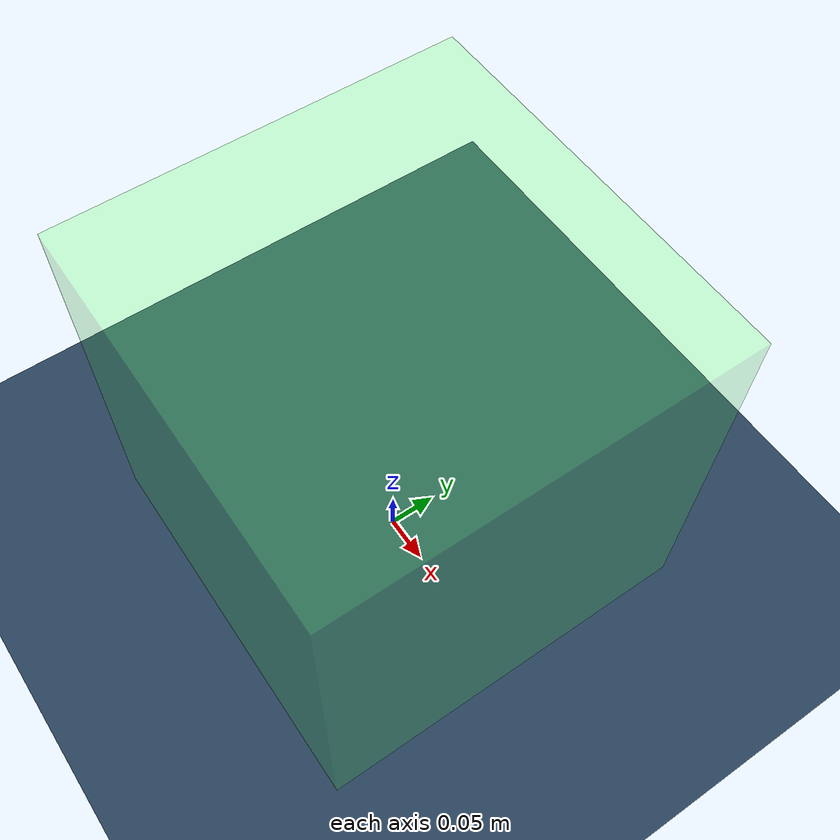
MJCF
<mujoco>
  <option timestep="0.005"/>

  <asset>
    <texture type="skybox" builtin="gradient" rgb1=".3 .5 .7" rgb2="0 0 0" width="512" height="512"/>
		<texture name="body" type="cube" builtin="flat" width="16" height="16"
					   rgb1=".5 .5 .5" markrgb="1 1 1" mark="random" random=".1"/>
    <material name="body" texture="body" texuniform="true"/>
    <texture name="grid" type="2d" builtin="checker" width="512" height="512" rgb1=".1 .2 .3" rgb2=".2 .3 .4"/>
    <material name="grid" texture="grid" texrepeat="1 1" texuniform="true" reflectance=".2"/>
  </asset>

  <worldbody>
    <camera name="track" pos="0 0 2" xyaxes="1 0 0 0 1 0" mode="trackcom"/>
    <geom name="floor" size="0 0 .05" type="plane" material="grid" condim="3" friction="0.2 0.005 0.0001"/>
    <light name="top" pos="0 0 1" directional="true" castshadow="false"/>
    <body name="hand" pos="0 0 0.2">
      <freejoint/>
      <geom name="hand" type="box" size=".2 .2 .2" material="body" rgba=".8 0 0 .25" condim="1" friction=".0"/>
    </body>
    <geom name="target" type="box" size=".2 .2 .2" material="body" rgba=".3 1 .3 .25" pos="0 0 .2" euler="0 0 0" contype="0" conaffinity="0"/>
  </worldbody>
</mujoco>
